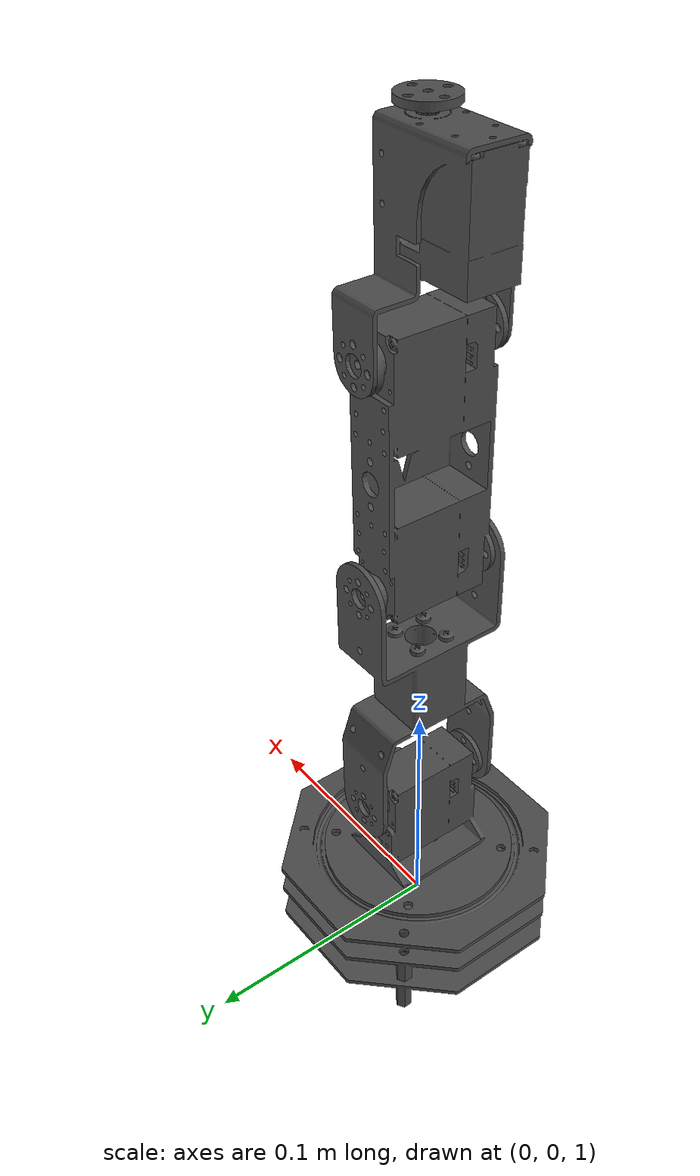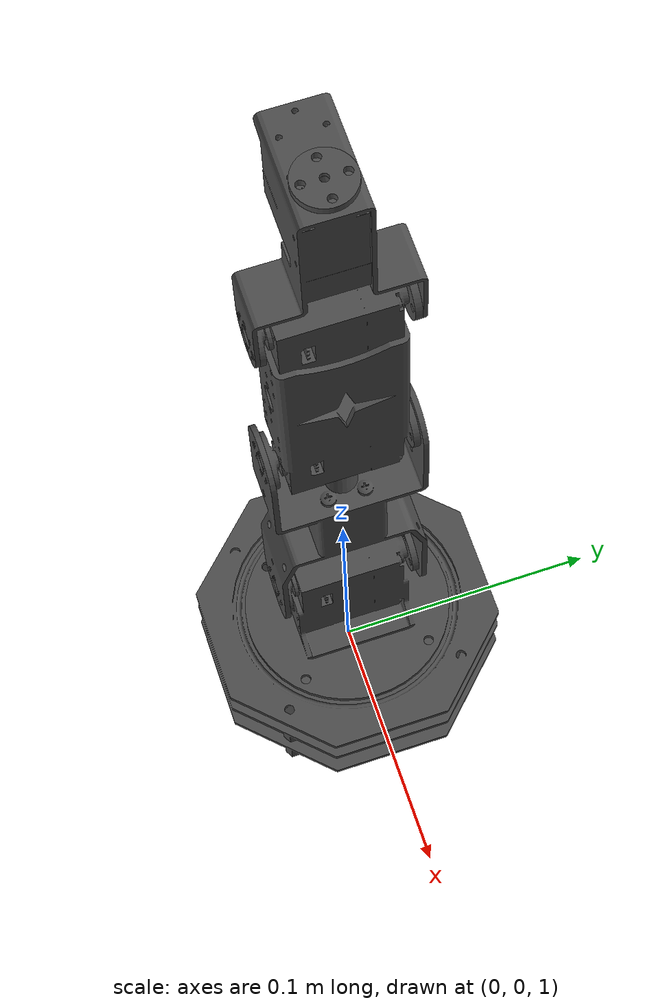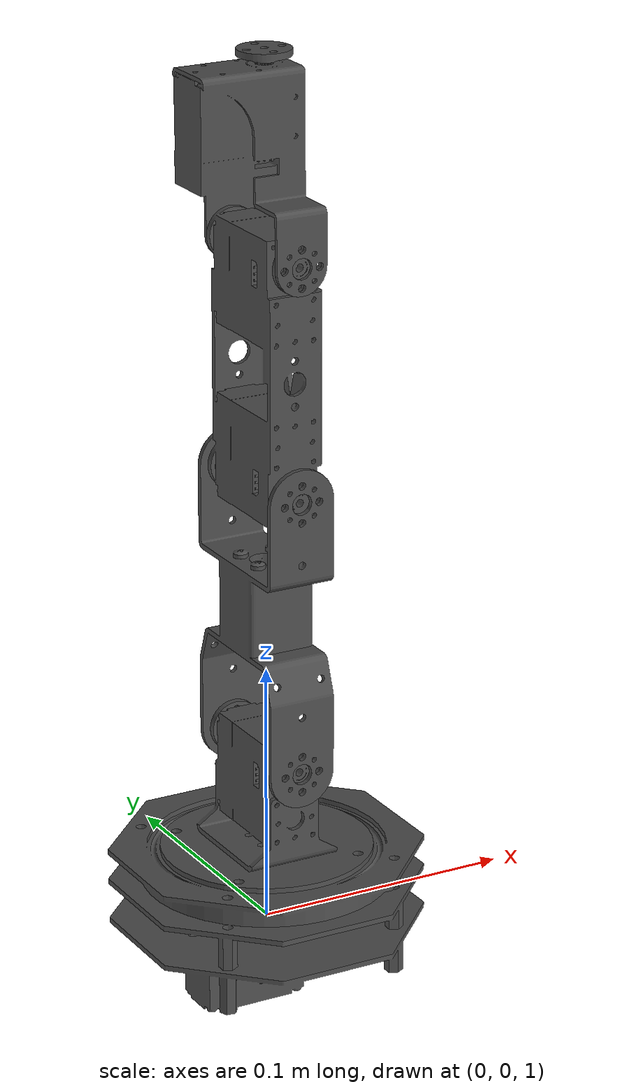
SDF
<?xml version="1.0" ?>
<!-- 用不到了这个文件 -->

<sdf version="1.6">
  <world name="default">
    <physics type="ode">
      <ode>
        <solver>
          <type>quick</type>
          <iters>100</iters>
          <sor>1.0</sor>
        </solver>
        <constraints>
          <cfm>0.0</cfm>
          <erp>0.9</erp>
          <contact_max_correcting_vel>0.1</contact_max_correcting_vel>
          <contact_surface_layer>0.0</contact_surface_layer>
        </constraints>
      </ode>
      <real_time_update_rate>0</real_time_update_rate>
      <max_step_size>0.0025</max_step_size>
    </physics>

      <include>
      <uri>model://sun</uri>
    </include>

    <model name="ground_plane">
      <static>true</static>
      <link name="link">
        <collision name="collision">
          <geometry>
            <plane>
              <normal>0 0 1</normal>
              <size>5000 5000</size>
            </plane>
          </geometry>
          <surface>
            <friction>
              <ode>
                <mu>1</mu>
                <mu2>1</mu2>
              </ode>
            </friction>
          </surface>
        </collision>
        <visual name="runway">
          <pose>000 0 0.005 0 0 -1.5707</pose>
          <cast_shadows>false</cast_shadows>
          <geometry>
            <plane>
              <normal>0 0 1</normal>
              <size>1829 45</size>
            </plane>
          </geometry>
          <material>
            <script>
              <uri>file://media/materials/scripts/gazebo.material</uri>
              <name>Gazebo/Runway</name>
            </script>
          </material>
        </visual>

        <visual name="grass">
          <pose>0 0 -0.1 0 0 0</pose>
          <cast_shadows>false</cast_shadows>
          <geometry>
            <plane>
              <normal>0 0 1</normal>
              <size>5000 5000</size>
            </plane>
          </geometry>
          <material>
            <script>
              <uri>file://media/materials/scripts/gazebo.material</uri>
              <name>Gazebo/Grass</name>
            </script>
          </material>
        </visual>

      </link>
    </model>

    <model name="robotic_arm">
      <pose> 0 0 1 0 0 0 </pose>
      <include>
        <uri>model://robotic_arm</uri>
         <pose> 0 0 0 0 0 0 </pose>
      </include>
    </model>
  </world>
</sdf>

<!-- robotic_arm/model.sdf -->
<sdf version='1.7'>
  <model name='robotic_arm'>
    <link name='base_link'>
      <inertial>
        <pose>-0.000805 -3.1e-05 0.015733 0 -0 0</pose>
        <mass>0.34432</mass>
        <inertia>
          <ixx>0.00026968</ixx>
          <ixy>-2.6656e-10</ixy>
          <ixz>-8.0892e-08</ixz>
          <iyy>0.00027222</iyy>
          <iyz>-9.1152e-11</iyz>
          <izz>0.00052932</izz>
        </inertia>
      </inertial>
      <visual name='base_link_visual'>
        <pose>0 0 0 0 -0 0</pose>
        <geometry>
          <mesh>
            <scale>1 1 1</scale>
            <uri>model://robotic_arm/meshes/base_link.STL</uri>
          </mesh>
        </geometry>
        <material>
          <script>
            <name>Gazebo/DarkGrey</name>
            <uri>file://media/materials/scripts/gazebo.material</uri>
          </script>
        </material>
      </visual>
    </link>
    <joint name='joint_1' type='revolute'>
      <pose relative_to='base_link'>0 0 0.03 0 -0 0</pose>
      <parent>base_link</parent>
      <child>link_1</child>
      <axis>
        <xyz>0 0 -1</xyz>
        <limit>
          <lower>-2.36</lower>
          <upper>2.36</upper>
          <effort>10</effort>
          <velocity>1.5</velocity>
        </limit>
        <dynamics>
          <damping>0.05</damping>
          <friction>0.01</friction>
          <spring_reference>0</spring_reference>
          <spring_stiffness>0</spring_stiffness>
        </dynamics>
      </axis>
      <physics>
        <ode>
          <implicit_spring_damper>1</implicit_spring_damper>
          <cfm_damping>1</cfm_damping>
          <limit>
            <cfm>0</cfm>
            <erp>0.2</erp>
          </limit>
        </ode>
      </physics>
    </joint>
    <link name='link_1'>
      <pose relative_to='joint_1'>0 0 0 0 -0 0</pose>
      <inertial>
        <pose>-2.1e-05 0.000147 0.016563 0 -0 0</pose>
        <mass>0.057604</mass>
        <inertia>
          <ixx>1.8263e-05</ixx>
          <ixy>-3.807e-10</ixy>
          <ixz>-1.4763e-10</ixz>
          <iyy>1.3985e-05</iyy>
          <iyz>-2.922e-08</iyz>
          <izz>2.307e-05</izz>
        </inertia>
      </inertial>
      <visual name='link_1_visual'>
        <pose>0 0 0 0 -0 0</pose>
        <geometry>
          <mesh>
            <scale>1 1 1</scale>
            <uri>model://robotic_arm/meshes/link_1.STL</uri>
          </mesh>
        </geometry>
        <material>
          <script>
            <name>Gazebo/DarkGrey</name>
            <uri>file://media/materials/scripts/gazebo.material</uri>
          </script>
        </material>
      </visual>
    </link>
    <joint name='joint_2' type='revolute'>
      <pose relative_to='link_1'>0.000113 0 0.038401 -1.57079 -1.57079 -3.14159</pose>
      <parent>link_1</parent>
      <child>link_2</child>
      <axis>
        <xyz>0 0 1</xyz>
        <limit>
          <lower>-2.36</lower>
          <upper>2.36</upper>
          <effort>10</effort>
          <velocity>1.5</velocity>
        </limit>
        <dynamics>
          <damping>0.05</damping>
          <friction>0.01</friction>
          <spring_reference>0</spring_reference>
          <spring_stiffness>0</spring_stiffness>
        </dynamics>
      </axis>
      <physics>
        <ode>
          <implicit_spring_damper>1</implicit_spring_damper>
          <cfm_damping>1</cfm_damping>
          <limit>
            <cfm>0</cfm>
            <erp>0.2</erp>
          </limit>
        </ode>
      </physics>
    </joint>
    <link name='link_2'>
      <pose relative_to='joint_2'>0 0 0 0 -0 0</pose>
      <inertial>
        <pose>0.056726 -0 -0.000271 0 -0 0</pose>
        <mass>0.039095</mass>
        <inertia>
          <ixx>1.0114e-05</ixx>
          <ixy>7.2762e-21</ixy>
          <ixz>2.0973e-19</ixz>
          <iyy>1.4176e-05</iyy>
          <iyz>3.677e-21</iyz>
          <izz>7.7479e-06</izz>
        </inertia>
      </inertial>
      <visual name='link_2_visual'>
        <pose>0 0 0 0 -0 0</pose>
        <geometry>
          <mesh>
            <scale>1 1 1</scale>
            <uri>model://robotic_arm/meshes/link_2.STL</uri>
          </mesh>
        </geometry>
        <material>
          <script>
            <name>Gazebo/DarkGrey</name>
            <uri>file://media/materials/scripts/gazebo.material</uri>
          </script>
        </material>
      </visual>
    </link>
    <joint name='joint_3' type='revolute'>
      <pose relative_to='link_2'>0.10507 0 0 0 -0 0</pose>
      <parent>link_2</parent>
      <child>link_3</child>
      <axis>
        <xyz>0 0 1</xyz>
        <limit>
          <lower>-2.36</lower>
          <upper>2.36</upper>
          <effort>10</effort>
          <velocity>1.5</velocity>
        </limit>
        <dynamics>
          <damping>0.05</damping>
          <friction>0.01</friction>
          <spring_reference>0</spring_reference>
          <spring_stiffness>0</spring_stiffness>
        </dynamics>
      </axis>
      <physics>
        <ode>
          <implicit_spring_damper>1</implicit_spring_damper>
          <cfm_damping>1</cfm_damping>
          <limit>
            <cfm>0</cfm>
            <erp>0.2</erp>
          </limit>
        </ode>
      </physics>
    </joint>
    <link name='link_3'>
      <pose relative_to='joint_3'>0 0 0 0 -0 0</pose>
      <inertial>
        <pose>0.043581 -0.000872 -0.000243 0 -0 0</pose>
        <mass>0.075843</mass>
        <inertia>
          <ixx>1.4302e-05</ixx>
          <ixy>2.9527e-10</ixy>
          <ixz>-1.407e-12</ixz>
          <iyy>2.3711e-05</iyy>
          <iyz>-4.2397e-20</iyz>
          <izz>1.4547e-05</izz>
        </inertia>
      </inertial>
      <visual name='link_3_visual'>
        <pose>0 0 0 0 -0 0</pose>
        <geometry>
          <mesh>
            <scale>1 1 1</scale>
            <uri>model://robotic_arm/meshes/link_3.STL</uri>
          </mesh>
        </geometry>
        <material>
          <script>
            <name>Gazebo/DarkGrey</name>
            <uri>file://media/materials/scripts/gazebo.material</uri>
          </script>
        </material>
      </visual>
    </link>
    <joint name='joint_4' type='revolute'>
      <pose relative_to='link_3'>0.087162 -0.000311 -0.000271 0 -0 0</pose>
      <parent>link_3</parent>
      <child>link_4</child>
      <axis>
        <xyz>0 0 1</xyz>
        <limit>
          <lower>-2.36</lower>
          <upper>2.36</upper>
          <effort>10</effort>
          <velocity>1.5</velocity>
        </limit>
        <dynamics>
          <damping>0.05</damping>
          <friction>0.01</friction>
          <spring_reference>0</spring_reference>
          <spring_stiffness>0</spring_stiffness>
        </dynamics>
      </axis>
      <physics>
        <ode>
          <implicit_spring_damper>1</implicit_spring_damper>
          <cfm_damping>1</cfm_damping>
          <limit>
            <cfm>0</cfm>
            <erp>0.2</erp>
          </limit>
        </ode>
      </physics>
    </joint>
    <link name='link_4'>
      <pose relative_to='joint_4'>0 0 0 0 -0 0</pose>
      <inertial>
        <pose>0.044666 0.009062 0.000129 0 -0 0</pose>
        <mass>0.038113</mass>
        <inertia>
          <ixx>7.4825e-06</ixx>
          <ixy>-5.112e-07</ixy>
          <ixz>3.807e-10</ixz>
          <iyy>1.0505e-05</iyy>
          <iyz>-1.4763e-10</iyz>
          <izz>1.2542e-05</izz>
        </inertia>
      </inertial>
      <visual name='link_4_visual'>
        <pose>0 0 0 0 -0 0</pose>
        <geometry>
          <mesh>
            <scale>1 1 1</scale>
            <uri>model://robotic_arm/meshes/link_4.STL</uri>
          </mesh>
        </geometry>
        <material>
          <script>
            <name>Gazebo/DarkGrey</name>
            <uri>file://media/materials/scripts/gazebo.material</uri>
          </script>
        </material>
      </visual>
    </link>
    <joint name='joint_5' type='revolute'>
      <pose relative_to='link_4'>0.073 0 0 -1.5708 -0 -1.5708</pose>
      <parent>link_4</parent>
      <child>link_5</child>
      <axis>
        <xyz>0 0 -1</xyz>
        <limit>
          <lower>-2.36</lower>
          <upper>2.36</upper>
          <effort>10</effort>
          <velocity>1.5</velocity>
        </limit>
        <dynamics>
          <damping>0.05</damping>
          <friction>0.01</friction>
          <spring_reference>0</spring_reference>
          <spring_stiffness>0</spring_stiffness>
        </dynamics>
      </axis>
      <physics>
        <ode>
          <implicit_spring_damper>1</implicit_spring_damper>
          <cfm_damping>1</cfm_damping>
          <limit>
            <cfm>0</cfm>
            <erp>0.2</erp>
          </limit>
        </ode>
      </physics>
    </joint>
    <link name='link_5'>
      <pose relative_to='joint_5'>0 0 0 0 -0 0</pose>
      <inertial>
        <pose>-0 0 -0.001453 0 -0 0</pose>
        <mass>0.01</mass>
        <inertia>
          <ixx>1.9014e-08</ixx>
          <ixy>-9.2928e-25</ixy>
          <ixz>3.0708e-24</ixz>
          <iyy>1.9014e-08</iyy>
          <iyz>1.5073e-23</iyz>
          <izz>3.6585e-08</izz>
        </inertia>
      </inertial>
      <visual name='link_5_visual'>
        <pose>0 0 0 0 -0 0</pose>
        <geometry>
          <mesh>
            <scale>1 1 1</scale>
            <uri>model://robotic_arm/meshes/link_5.STL</uri>
          </mesh>
        </geometry>
        <material>
          <script>
            <name>Gazebo/DarkGrey</name>
            <uri>file://media/materials/scripts/gazebo.material</uri>
          </script>
        </material>
      </visual>
    </link>
    <frame name='flange_to_tool0' attached_to='link_5'>
      <pose>0 0 0 0 -0 0</pose>
    </frame>
    <frame name='tool0' attached_to='flange_to_tool0'/>
  </model>
</sdf>
